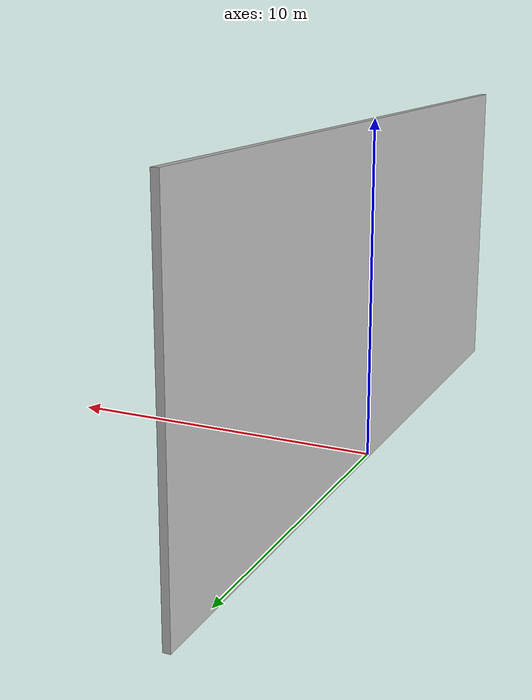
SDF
<?xml version="1.0" ?>

<sdf version="1.5">
<model name='concrete_20_2400_1000'>
      <static>1</static>
      <link name="link">
        <pose>0 0 5.0 0 0 0</pose>

        <visual name="visual">
          <geometry>
            <box>
              <size>0.2 24.0 10.0</size>
            </box>
          </geometry>
          <material>
            <script>
              <uri>model:///home/klaxalk/git/radiation/radiation_simulation/.gitman/gazebo_rad_obstacle/gazebo_files/materials/scripts</uri>
              <uri>model:///home/klaxalk/git/radiation/radiation_simulation/.gitman/gazebo_rad_obstacle/gazebo_files/materials/textures</uri>
              <name>concrete/Image</name>
            </script>
          </material>
        </visual>
        <collision name="collision">
          <geometry>
            <box>
              <size>0.2 24.0 10.0</size>
            </box>
          </geometry>
          <surface>
            <friction>
              <ode>
                <mu>0</mu>
                <mu2>0</mu2>
                <slip1>1.0</slip1>
                <slip2>1.0</slip2>
              </ode>
            </friction>
          </surface>
        </collision>
      </link>

      <plugin name='concrete' filename='libgazebo_rad_obstacle.so'>
      <material>concrete</material>
      <publish_rate>10</publish_rate> <!-- Hz -->
      <size_x>0.2</size_x>
      <size_y>24.0</size_y>
      <size_z>10.0</size_z>
      </plugin>

    </model>
  </sdf>
